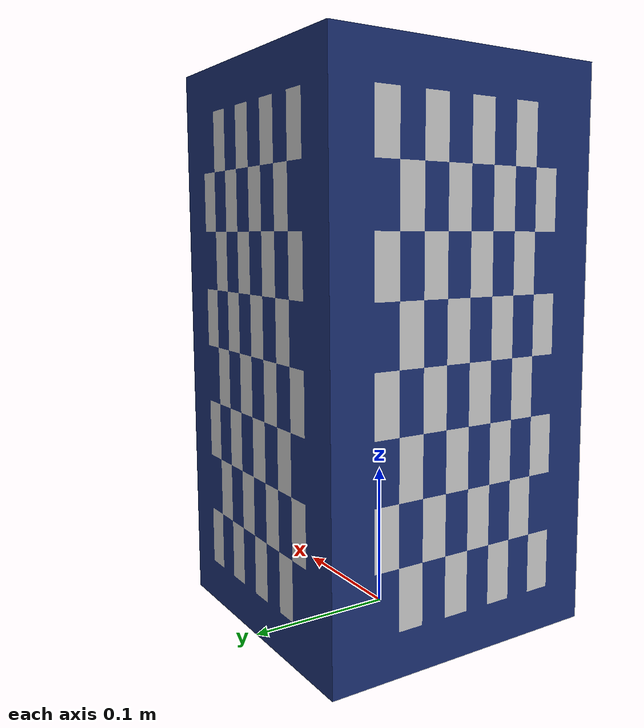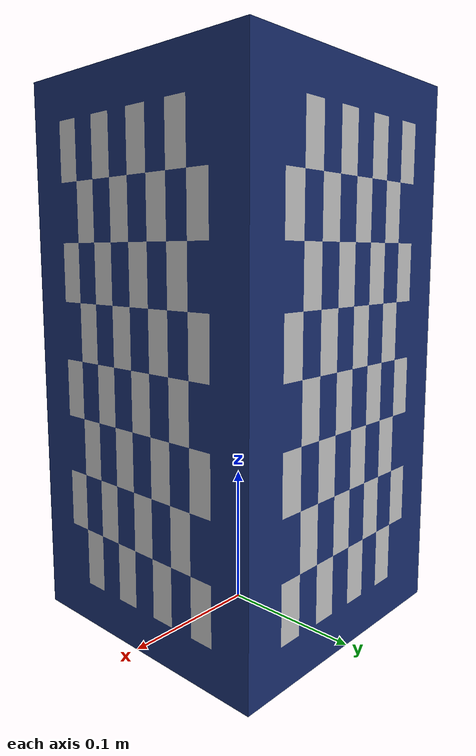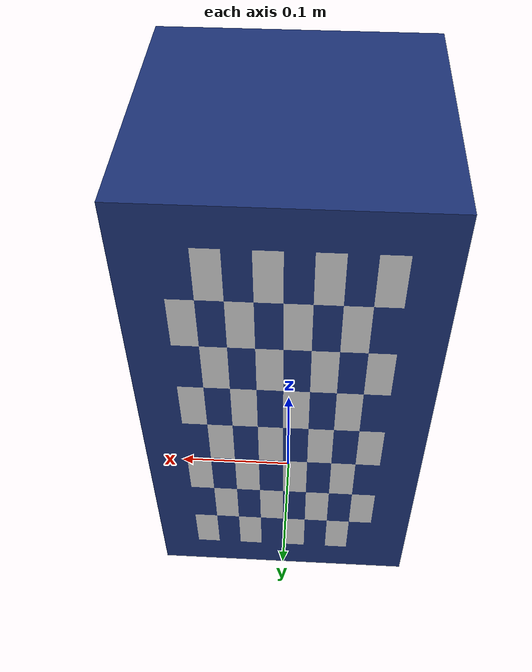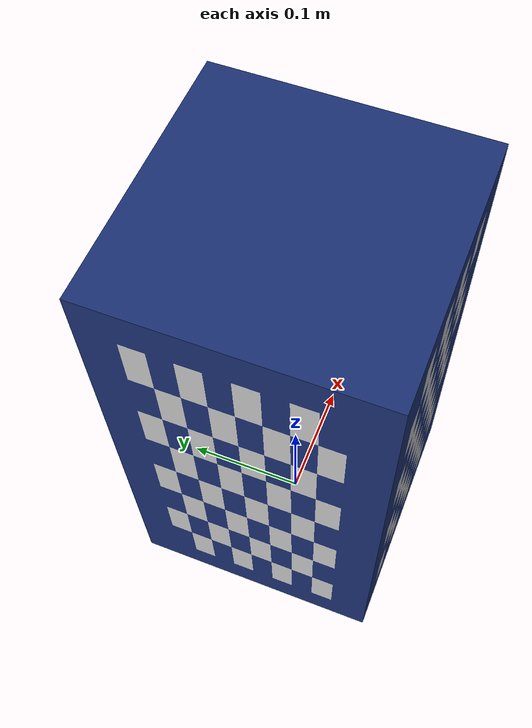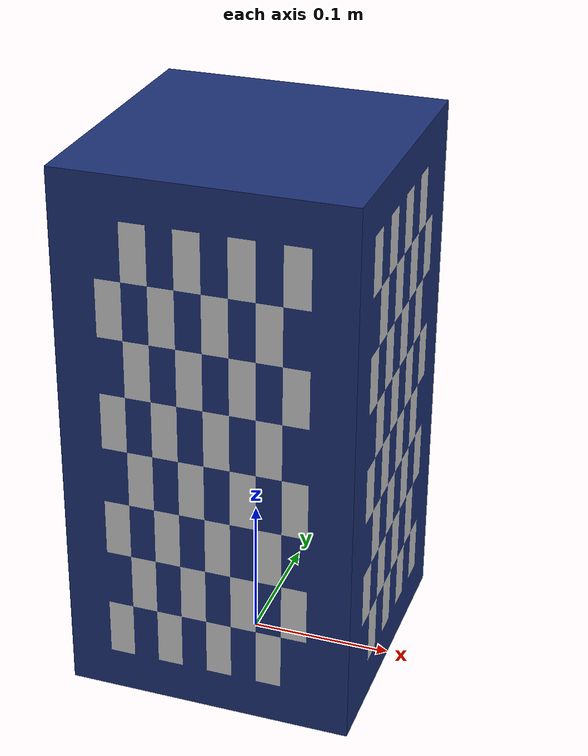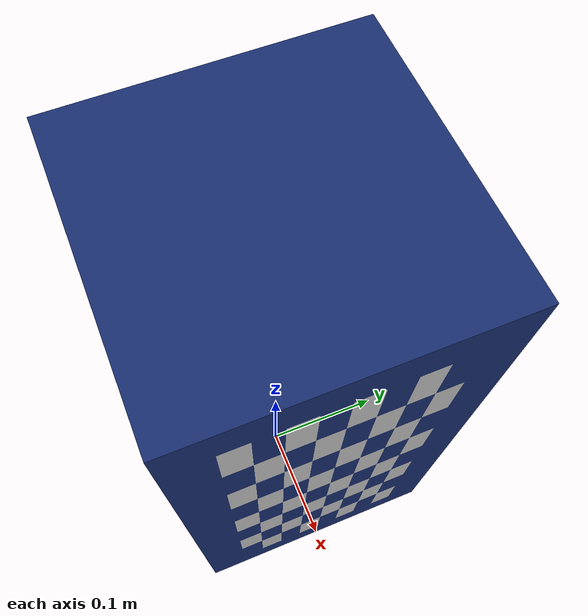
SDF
<?xml version="1.0" ?>
<sdf version="1.8">
  <model name="DecoBuilding">
    <static>true</static>
    <link name="DecoBuilding">
      <visual name="visual">
        <geometry>
          <mesh>
            <uri>model://YahboomTrack/DecoBuilding/meshes/DecoBuilding.dae</uri>
            <scale>2.0 2.0 2.0</scale>
          </mesh>
        </geometry>
      </visual>
      <collision name="visual">
        <geometry>
          <mesh>
            <uri>model://YahboomTrack/DecoBuilding/meshes/DecoBuilding.dae</uri>
            <scale>2.0 2.0 2.0</scale>
          </mesh>
        </geometry>
      </collision>
    </link>
  </model>
</sdf>
